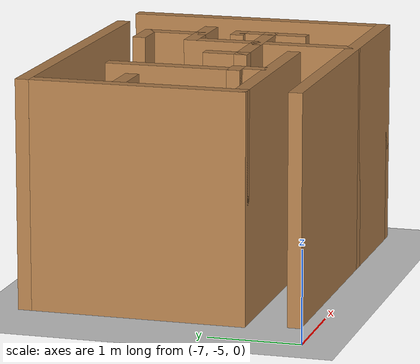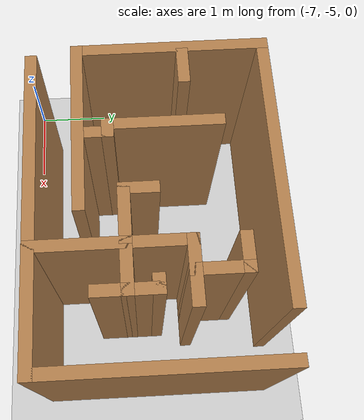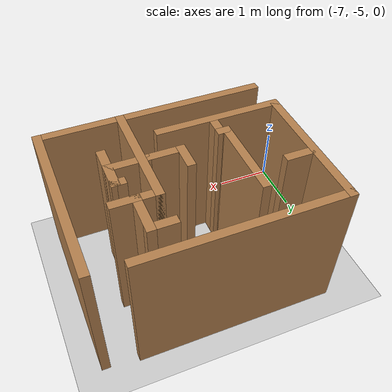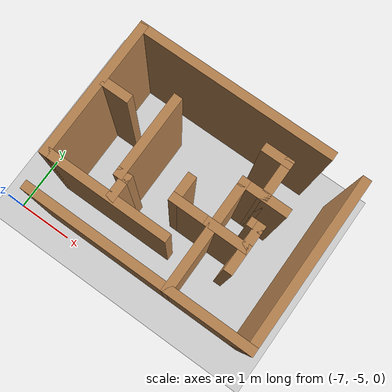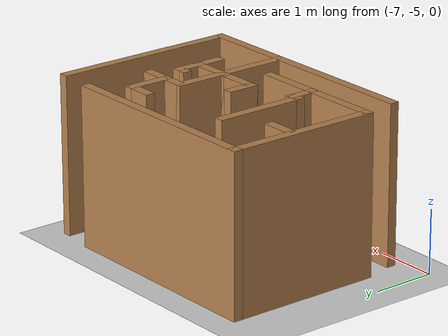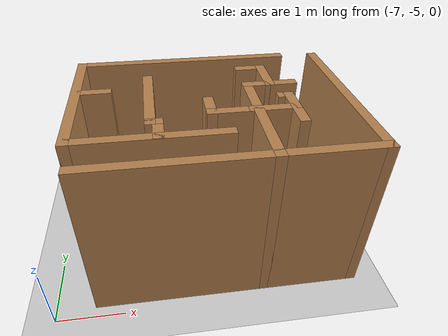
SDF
<sdf version="1.7">
 <world name="default">
  <light name="sun" type="directional">
   <pose>0 0 10 0 -0 0</pose>
   <diffuse>0.8 0.8 0.8 1</diffuse>
   <specular>0.2 0.2 0.2 1</specular>
   <attenuation>
    <range>1000</range>
    <constant>0.9</constant>
    <linear>0.01</linear>
    <quadratic>0.001</quadratic>
   </attenuation>
   <direction>-0.5 0.1 -0.9</direction>
   <spot><inner_angle>0</inner_angle><outer_angle>0</outer_angle><falloff>0</falloff></spot>
  </light>
  <model name="ground_plane">
   <static>1</static>
   <link name="link">
    <collision name="collision">
     <geometry><plane><normal>0 0 1</normal><size>100 100</size></plane></geometry>
     <surface>
      <contact><collide_bitmask>65535</collide_bitmask></contact>
      <friction><ode><mu>100</mu><mu2>50</mu2></ode></friction>
     </surface>
    </collision>
    <visual name="visual">
     <cast_shadows>0</cast_shadows>
     <geometry><plane><normal>0 0 1</normal><size>100 100</size></plane></geometry>
     <material>
      <script><uri>file://media/materials/scripts/gazebo.material</uri><name>Gazebo/Grey</name></script>
     </material>
    </visual>
   </link>
  </model>
  <gravity>0 0 -9.8</gravity>
  <magnetic_field>6e-06 2.3e-05 -4.2e-05</magnetic_field>
  <atmosphere type="adiabatic"/>
  <physics type="ode">
   <max_step_size>0.001</max_step_size>
   <real_time_factor>1</real_time_factor>
   <real_time_update_rate>1000</real_time_update_rate>
  </physics>
  <scene><ambient>0.4 0.4 0.4 1</ambient><background>0.7 0.7 0.7 1</background><shadows>1</shadows></scene>
  <spherical_coordinates>
   <surface_model>EARTH_WGS84</surface_model>
   <latitude_deg>0</latitude_deg>
   <longitude_deg>0</longitude_deg>
   <elevation>0</elevation>
   <heading_deg>0</heading_deg>
  </spherical_coordinates>
  <model name="maze.world">
   <pose>-3.2775 -2.4225 0 0 -0 0</pose>
   <link name="Wall_0">
    <collision name="Wall_0_Collision">
     <geometry><box><size>4 0.15 2.5</size></box></geometry>
     <pose>0 0 1.25 0 -0 0</pose>
    </collision>
    <visual name="Wall_0_Visual">
     <pose>0 0 1.25 0 -0 0</pose>
     <geometry><box><size>4 0.15 2.5</size></box></geometry>
     <material>
      <script><uri>file://media/materials/scripts/gazebo.material</uri><name>Gazebo/Wood</name></script>
      <ambient>1 1 1 1</ambient>
     </material>
     <meta><layer>0</layer></meta>
    </visual>
    <pose>-1.1575 -2.3475 0 0 -0 0</pose>
   </link>
   <link name="Wall_1">
    <collision name="Wall_1_Collision">
     <geometry><box><size>3 0.15 2.5</size></box></geometry>
     <pose>0 0 1.25 0 -0 0</pose>
    </collision>
    <visual name="Wall_1_Visual">
     <pose>0 0 1.25 0 -0 0</pose>
     <geometry><box><size>3 0.15 2.5</size></box></geometry>
     <material>
      <script><uri>file://media/materials/scripts/gazebo.material</uri><name>Gazebo/Wood</name></script>
      <ambient>1 1 1 1</ambient>
     </material>
     <meta><layer>0</layer></meta>
    </visual>
    <pose>0.7675 -0.9225 0 0 -0 1.5708</pose>
   </link>
   <link name="Wall_10">
    <collision name="Wall_10_Collision">
     <geometry><box><size>0.25 0.15 2.5</size></box></geometry>
     <pose>0 0 1.25 0 -0 0</pose>
    </collision>
    <visual name="Wall_10_Visual">
     <pose>0 0 1.25 0 -0 0</pose>
     <geometry><box><size>0.25 0.15 2.5</size></box></geometry>
     <material>
      <script><uri>file://media/materials/scripts/gazebo.material</uri><name>Gazebo/Wood</name></script>
      <ambient>1 1 1 1</ambient>
     </material>
     <meta><layer>0</layer></meta>
    </visual>
    <pose>-2.0825 -1.4175 0 0 -0 3.14159</pose>
   </link>
   <link name="Wall_11">
    <collision name="Wall_11_Collision">
     <geometry><box><size>1.5 0.15 2.5</size></box></geometry>
     <pose>0 0 1.25 0 -0 0</pose>
    </collision>
    <visual name="Wall_11_Visual">
     <pose>0 0 1.25 0 -0 0</pose>
     <geometry><box><size>1.5 0.15 2.5</size></box></geometry>
     <material>
      <script><uri>file://media/materials/scripts/gazebo.material</uri><name>Gazebo/Wood</name></script>
      <ambient>1 1 1 1</ambient>
     </material>
     <meta><layer>0</layer></meta>
    </visual>
    <pose>-2.1325 -0.7425 0 0 -0 1.5708</pose>
   </link>
   <link name="Wall_13">
    <collision name="Wall_13_Collision">
     <geometry><box><size>0.5 0.15 2.5</size></box></geometry>
     <pose>0 0 1.25 0 -0 0</pose>
    </collision>
    <visual name="Wall_13_Visual">
     <pose>0 0 1.25 0 -0 0</pose>
     <geometry><box><size>0.5 0.15 2.5</size></box></geometry>
     <material>
      <script><uri>file://media/materials/scripts/gazebo.material</uri><name>Gazebo/Wood</name></script>
      <ambient>1 1 1 1</ambient>
     </material>
     <meta><layer>0</layer></meta>
    </visual>
    <pose>-2.9275 -0.4475 0 0 -0 0</pose>
   </link>
   <link name="Wall_15">
    <collision name="Wall_15_Collision">
     <geometry><box><size>2 0.15 2.5</size></box></geometry>
     <pose>0 0 1.25 0 -0 0</pose>
    </collision>
    <visual name="Wall_15_Visual">
     <pose>0 0 1.25 0 -0 0</pose>
     <geometry><box><size>2 0.15 2.5</size></box></geometry>
     <material>
      <script><uri>file://media/materials/scripts/gazebo.material</uri><name>Gazebo/Wood</name></script>
      <ambient>1 1 1 1</ambient>
     </material>
     <meta><layer>0</layer></meta>
    </visual>
    <pose>-0.6225 -1.4225 0 0 -0 1.5708</pose>
   </link>
   <link name="Wall_16">
    <collision name="Wall_16_Collision">
     <geometry><box><size>0.5 0.15 2.5</size></box></geometry>
     <pose>0 0 1.25 0 -0 0</pose>
    </collision>
    <visual name="Wall_16_Visual">
     <pose>0 0 1.25 0 -0 0</pose>
     <geometry><box><size>0.5 0.15 2.5</size></box></geometry>
     <material>
      <script><uri>file://media/materials/scripts/gazebo.material</uri><name>Gazebo/Wood</name></script>
      <ambient>1 1 1 1</ambient>
     </material>
     <meta><layer>0</layer></meta>
    </visual>
    <pose>-0.4475 -0.4975 0 0 -0 0</pose>
   </link>
   <link name="Wall_17">
    <collision name="Wall_17_Collision">
     <geometry><box><size>0.75 0.15 2.5</size></box></geometry>
     <pose>0 0 1.25 0 -0 0</pose>
    </collision>
    <visual name="Wall_17_Visual">
     <pose>0 0 1.25 0 -0 0</pose>
     <geometry><box><size>0.75 0.15 2.5</size></box></geometry>
     <material>
      <script><uri>file://media/materials/scripts/gazebo.material</uri><name>Gazebo/Wood</name></script>
      <ambient>1 1 1 1</ambient>
     </material>
     <meta><layer>0</layer></meta>
    </visual>
    <pose>-0.2725 -0.1975 0 0 -0 1.5708</pose>
   </link>
   <link name="Wall_18">
    <collision name="Wall_18_Collision">
     <geometry><box><size>0.5 0.15 2.5</size></box></geometry>
     <pose>0 0 1.25 0 -0 0</pose>
    </collision>
    <visual name="Wall_18_Visual">
     <pose>0 0 1.25 0 -0 0</pose>
     <geometry><box><size>0.5 0.15 2.5</size></box></geometry>
     <material>
      <script><uri>file://media/materials/scripts/gazebo.material</uri><name>Gazebo/Wood</name></script>
      <ambient>1 1 1 1</ambient>
     </material>
     <meta><layer>0</layer></meta>
    </visual>
    <pose>-0.4475 0.1025 0 0 -0 3.14159</pose>
   </link>
   <link name="Wall_21">
    <collision name="Wall_21_Collision">
     <geometry><box><size>0.5 0.15 2.5</size></box></geometry>
     <pose>0 0 1.25 0 -0 0</pose>
    </collision>
    <visual name="Wall_21_Visual">
     <pose>0 0 1.25 0 -0 0</pose>
     <geometry><box><size>0.5 0.15 2.5</size></box></geometry>
     <material>
      <script><uri>file://media/materials/scripts/gazebo.material</uri><name>Gazebo/Wood</name></script>
      <ambient>1 1 1 1</ambient>
     </material>
     <meta><layer>0</layer></meta>
    </visual>
    <pose>-0.0975 -0.4975 0 0 -0 0</pose>
   </link>
   <link name="Wall_23">
    <collision name="Wall_23_Collision">
     <geometry><box><size>0.75 0.15 2.5</size></box></geometry>
     <pose>0 0 1.25 0 -0 0</pose>
    </collision>
    <visual name="Wall_23_Visual">
     <pose>0 0 1.25 0 -0 0</pose>
     <geometry><box><size>0.75 0.15 2.5</size></box></geometry>
     <material>
      <script><uri>file://media/materials/scripts/gazebo.material</uri><name>Gazebo/Wood</name></script>
      <ambient>1 1 1 1</ambient>
     </material>
     <meta><layer>0</layer></meta>
    </visual>
    <pose>-0.9825 -1.2575 0 0 -0 3.14159</pose>
   </link>
   <link name="Wall_24">
    <collision name="Wall_24_Collision">
     <geometry><box><size>0.5 0.15 2.5</size></box></geometry>
     <pose>0 0 1.25 0 -0 0</pose>
    </collision>
    <visual name="Wall_24_Visual">
     <pose>0 0 1.25 0 -0 0</pose>
     <geometry><box><size>0.5 0.15 2.5</size></box></geometry>
     <material>
      <script><uri>file://media/materials/scripts/gazebo.material</uri><name>Gazebo/Wood</name></script>
      <ambient>1 1 1 1</ambient>
     </material>
     <meta><layer>0</layer></meta>
    </visual>
    <pose>-1.2825 -1.0825 0 0 -0 1.5708</pose>
   </link>
   <link name="Wall_26">
    <collision name="Wall_26_Collision">
     <geometry><box><size>0.75 0.15 2.5</size></box></geometry>
     <pose>0 0 1.25 0 -0 0</pose>
    </collision>
    <visual name="Wall_26_Visual">
     <pose>0 0 1.25 0 -0 0</pose>
     <geometry><box><size>0.75 0.15 2.5</size></box></geometry>
     <material>
      <script><uri>file://media/materials/scripts/gazebo.material</uri><name>Gazebo/Wood</name></script>
      <ambient>1 1 1 1</ambient>
     </material>
     <meta><layer>0</layer></meta>
    </visual>
    <pose>-0.3825 -1.2575 0 0 -0 0</pose>
   </link>
   <link name="Wall_27">
    <collision name="Wall_27_Collision">
     <geometry><box><size>0.5 0.15 2.5</size></box></geometry>
     <pose>0 0 1.25 0 -0 0</pose>
    </collision>
    <visual name="Wall_27_Visual">
     <pose>0 0 1.25 0 -0 0</pose>
     <geometry><box><size>0.5 0.15 2.5</size></box></geometry>
     <material>
      <script><uri>file://media/materials/scripts/gazebo.material</uri><name>Gazebo/Wood</name></script>
      <ambient>1 1 1 1</ambient>
     </material>
     <meta><layer>0</layer></meta>
    </visual>
    <pose>-0.0825 -1.0825 0 0 -0 1.5708</pose>
   </link>
   <link name="Wall_28">
    <collision name="Wall_28_Collision">
     <geometry><box><size>0.25 0.15 2.5</size></box></geometry>
     <pose>0 0 1.25 0 -0 0</pose>
    </collision>
    <visual name="Wall_28_Visual">
     <pose>0 0 1.25 0 -0 0</pose>
     <geometry><box><size>0.25 0.15 2.5</size></box></geometry>
     <material>
      <script><uri>file://media/materials/scripts/gazebo.material</uri><name>Gazebo/Wood</name></script>
      <ambient>1 1 1 1</ambient>
     </material>
     <meta><layer>0</layer></meta>
    </visual>
    <pose>-0.1325 -0.9075 0 0 -0 3.14159</pose>
   </link>
   <link name="Wall_30">
    <collision name="Wall_30_Collision">
     <geometry><box><size>0.5 0.15 2.5</size></box></geometry>
     <pose>0 0 1.25 0 -0 0</pose>
    </collision>
    <visual name="Wall_30_Visual">
     <pose>0 0 1.25 0 -0 0</pose>
     <geometry><box><size>0.5 0.15 2.5</size></box></geometry>
     <material>
      <script><uri>file://media/materials/scripts/gazebo.material</uri><name>Gazebo/Wood</name></script>
      <ambient>1 1 1 1</ambient>
     </material>
     <meta><layer>0</layer></meta>
    </visual>
    <pose>-0.0825 -1.4325 0 0 -0 -1.5708</pose>
   </link>
   <link name="Wall_4">
    <collision name="Wall_4_Collision">
     <geometry><box><size>3.5 0.15 2.5</size></box></geometry>
     <pose>0 0 1.25 0 -0 0</pose>
    </collision>
    <visual name="Wall_4_Visual">
     <pose>0 0 1.25 0 -0 0</pose>
     <geometry><box><size>3.5 0.15 2.5</size></box></geometry>
     <material>
      <script><uri>file://media/materials/scripts/gazebo.material</uri><name>Gazebo/Wood</name></script>
      <ambient>1 1 1 1</ambient>
     </material>
     <meta><layer>0</layer></meta>
    </visual>
    <pose>-1.5275 0.5725 0 0 -0 3.14159</pose>
   </link>
   <link name="Wall_5">
    <collision name="Wall_5_Collision">
     <geometry><box><size>2.5 0.15 2.5</size></box></geometry>
     <pose>0 0 1.25 0 -0 0</pose>
    </collision>
    <visual name="Wall_5_Visual">
     <pose>0 0 1.25 0 -0 0</pose>
     <geometry><box><size>2.5 0.15 2.5</size></box></geometry>
     <material>
      <script><uri>file://media/materials/scripts/gazebo.material</uri><name>Gazebo/Wood</name></script>
      <ambient>1 1 1 1</ambient>
     </material>
     <meta><layer>0</layer></meta>
    </visual>
    <pose>-3.2025 -0.6025 0 0 -0 -1.5708</pose>
   </link>
   <link name="Wall_7">
    <collision name="Wall_7_Collision">
     <geometry><box><size>2.25 0.15 2.5</size></box></geometry>
     <pose>0 0 1.25 0 -0 0</pose>
    </collision>
    <visual name="Wall_7_Visual">
     <pose>0 0 1.25 0 -0 0</pose>
     <geometry><box><size>2.25 0.15 2.5</size></box></geometry>
     <material>
      <script><uri>file://media/materials/scripts/gazebo.material</uri><name>Gazebo/Wood</name></script>
      <ambient>1 1 1 1</ambient>
     </material>
     <meta><layer>0</layer></meta>
    </visual>
    <pose>-2.1525 -1.7775 0 0 -0 0</pose>
   </link>
   <link name="Wall_9">
    <collision name="Wall_9_Collision">
     <geometry><box><size>0.5 0.15 2.5</size></box></geometry>
     <pose>0 0 1.25 0 -0 0</pose>
    </collision>
    <visual name="Wall_9_Visual">
     <pose>0 0 1.25 0 -0 0</pose>
     <geometry><box><size>0.5 0.15 2.5</size></box></geometry>
     <material>
      <script><uri>file://media/materials/scripts/gazebo.material</uri><name>Gazebo/Wood</name></script>
      <ambient>1 1 1 1</ambient>
     </material>
     <meta><layer>0</layer></meta>
    </visual>
    <pose>-2.0325 -1.5925 0 0 -0 1.5708</pose>
   </link>
   <static>1</static>
  </model>
 </world>
</sdf>
